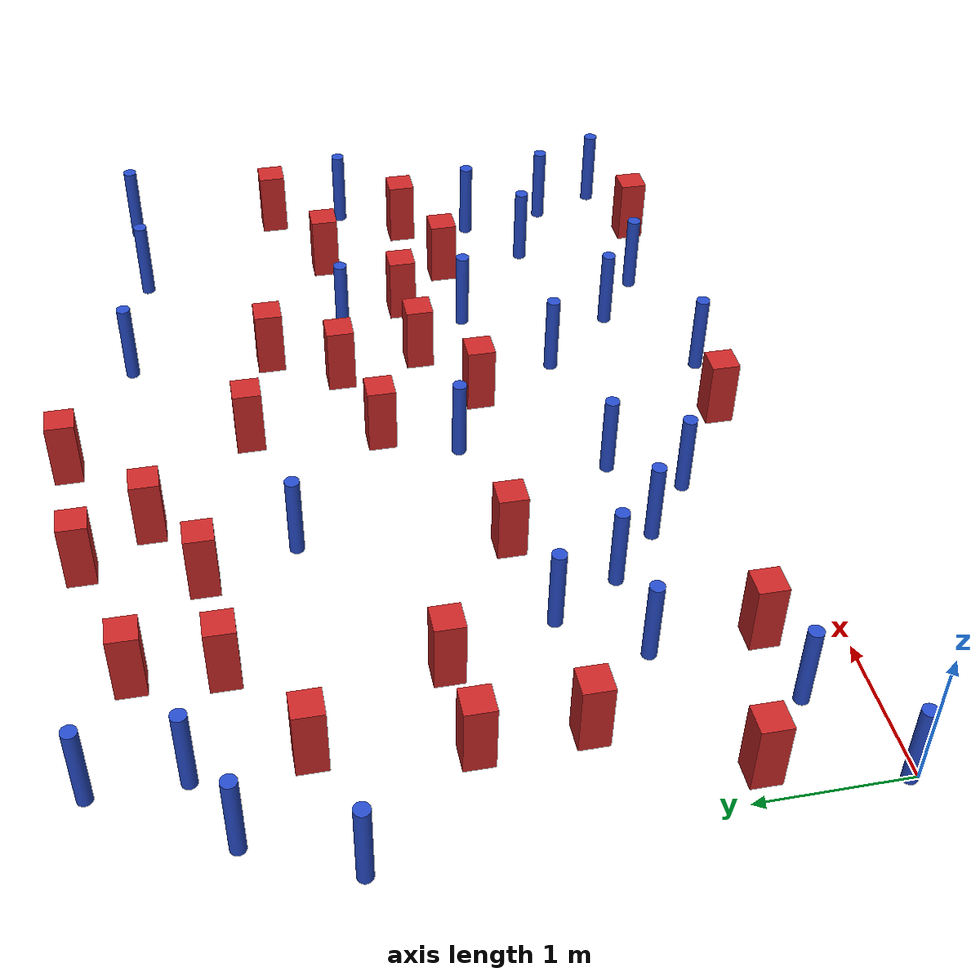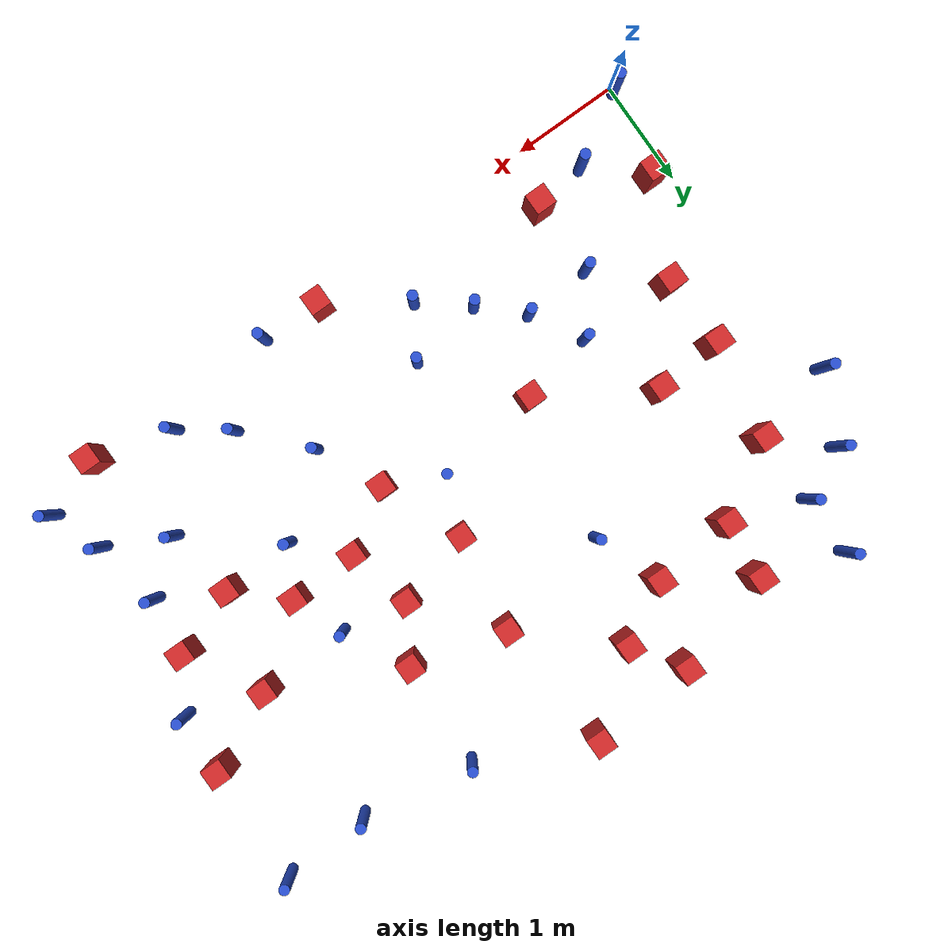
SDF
<sdf version="1.6">
 <model name="dense_78">
  <model name="square_post_obstacle3">
   <static>true</static>
   <pose>0.197763322349 0.872626212082 1.91545236811e-07 -7.35059704564e-06 1.12565212e-07 2.39332434364e-05</pose>
   <link name="link">
    <pose>0 0 0.25 0 -0 0</pose>
    <inertial>
     <mass>100</mass>
     <inertia>
      <ixx>0.166667</ixx>
      <ixy>0</ixy>
      <ixz>0</ixz>
      <iyy>0.166667</iyy>
      <iyz>0</iyz>
      <izz>0.166667</izz>
     </inertia>
    </inertial>
    <collision name="collision"><geometry><box><size>.2 .2 .5</size></box></geometry></collision>
    <visual name="visual">
     <geometry><box><size>.2 .2 .5</size></box></geometry>
     <material>
      <script><name>Gazebo/Red</name><uri>file://media/materials/scripts/gazebo.material</uri></script>
     </material>
    </visual>
   </link>
  </model>
  <model name="square_post_obstacle7">
   <static>true</static>
   <pose>2.50515203167 4.65884370068 1.91545236811e-07 -7.35059704564e-06 1.12565212e-07 2.39332434364e-05</pose>
   <link name="link">
    <pose>0 0 0.25 0 -0 0</pose>
    <inertial>
     <mass>100</mass>
     <inertia>
      <ixx>0.166667</ixx>
      <ixy>0</ixy>
      <ixz>0</ixz>
      <iyy>0.166667</iyy>
      <iyz>0</iyz>
      <izz>0.166667</izz>
     </inertia>
    </inertial>
    <collision name="collision"><geometry><box><size>.2 .2 .5</size></box></geometry></collision>
    <visual name="visual">
     <geometry><box><size>.2 .2 .5</size></box></geometry>
     <material>
      <script><name>Gazebo/Red</name><uri>file://media/materials/scripts/gazebo.material</uri></script>
     </material>
    </visual>
   </link>
  </model>
  <model name="pole_obstacle9">
   <static>true</static>
   <pose>4.5817701289 0.596697649328 7.38925637345e-09 -8.47170692799e-08 1.24976765038e-08 -1.74513093018e-07</pose>
   <link name="link">
    <pose>0 0 0.3 0 -0 0</pose>
    <inertial>
     <mass>1</mass>
     <inertia><ixx>0.145833</ixx><ixy>0</ixy><ixz>0</ixz><iyy>0.145833</iyy><iyz>0</iyz><izz>0.125</izz></inertia>
    </inertial>
    <collision name="collision">
     <geometry><cylinder><radius>0.05</radius><length>.6</length></cylinder></geometry>
    </collision>
    <visual name="visual">
     <geometry><cylinder><radius>0.05</radius><length>.6</length></cylinder></geometry>
     <material>
      <script><name>Gazebo/Blue</name><uri>file://media/materials/scripts/gazebo.material</uri></script>
     </material>
    </visual>
   </link>
  </model>
  <model name="pole_obstacle10">
   <static>true</static>
   <pose>5.64205923662 4.10121407407 7.38925637345e-09 -8.47170692796e-08 1.24976764786e-08 -1.74513093032e-07</pose>
   <link name="link">
    <pose>0 0 0.3 0 -0 0</pose>
    <inertial>
     <mass>1</mass>
     <inertia><ixx>0.145833</ixx><ixy>0</ixy><ixz>0</ixz><iyy>0.145833</iyy><iyz>0</iyz><izz>0.125</izz></inertia>
    </inertial>
    <collision name="collision">
     <geometry><cylinder><radius>0.05</radius><length>.6</length></cylinder></geometry>
    </collision>
    <visual name="visual">
     <geometry><cylinder><radius>0.05</radius><length>.6</length></cylinder></geometry>
     <material>
      <script><name>Gazebo/Blue</name><uri>file://media/materials/scripts/gazebo.material</uri></script>
     </material>
    </visual>
   </link>
  </model>
  <model name="pole_obstacle11">
   <static>true</static>
   <pose>4.08247064523 1.15306410399 7.38925637345e-09 -8.471706928e-08 1.24976765134e-08 -1.74513093015e-07</pose>
   <link name="link">
    <pose>0 0 0.3 0 -0 0</pose>
    <inertial>
     <mass>1</mass>
     <inertia><ixx>0.145833</ixx><ixy>0</ixy><ixz>0</ixz><iyy>0.145833</iyy><iyz>0</iyz><izz>0.125</izz></inertia>
    </inertial>
    <collision name="collision">
     <geometry><cylinder><radius>0.05</radius><length>.6</length></cylinder></geometry>
    </collision>
    <visual name="visual">
     <geometry><cylinder><radius>0.05</radius><length>.6</length></cylinder></geometry>
     <material>
      <script><name>Gazebo/Blue</name><uri>file://media/materials/scripts/gazebo.material</uri></script>
     </material>
    </visual>
   </link>
  </model>
  <model name="pole_obstacle13">
   <static>true</static>
   <pose>4.76619048261 1.69995667515 7.38925637345e-09 -8.471706928e-08 1.24976765134e-08 -1.74513093015e-07</pose>
   <link name="link">
    <pose>0 0 0.3 0 -0 0</pose>
    <inertial>
     <mass>1</mass>
     <inertia><ixx>0.145833</ixx><ixy>0</ixy><ixz>0</ixz><iyy>0.145833</iyy><iyz>0</iyz><izz>0.125</izz></inertia>
    </inertial>
    <collision name="collision">
     <geometry><cylinder><radius>0.05</radius><length>.6</length></cylinder></geometry>
    </collision>
    <visual name="visual">
     <geometry><cylinder><radius>0.05</radius><length>.6</length></cylinder></geometry>
     <material>
      <script><name>Gazebo/Blue</name><uri>file://media/materials/scripts/gazebo.material</uri></script>
     </material>
    </visual>
   </link>
  </model>
  <model name="square_post_obstacle10">
   <static>true</static>
   <pose>0.76890209243 3.38052567171 1.91545236811e-07 -7.35059704564e-06 1.12565212e-07 2.39332434364e-05</pose>
   <link name="link">
    <pose>0 0 0.25 0 -0 0</pose>
    <inertial>
     <mass>100</mass>
     <inertia>
      <ixx>0.166667</ixx>
      <ixy>0</ixy>
      <ixz>0</ixz>
      <iyy>0.166667</iyy>
      <iyz>0</iyz>
      <izz>0.166667</izz>
     </inertia>
    </inertial>
    <collision name="collision"><geometry><box><size>.2 .2 .5</size></box></geometry></collision>
    <visual name="visual">
     <geometry><box><size>.2 .2 .5</size></box></geometry>
     <material>
      <script><name>Gazebo/Red</name><uri>file://media/materials/scripts/gazebo.material</uri></script>
     </material>
    </visual>
   </link>
  </model>
  <model name="pole_obstacle17">
   <static>true</static>
   <pose>-0.0524319184626 3.18661917495 7.38925637345e-09 -8.47170692793e-08 1.24976764354e-08 -1.74513093044e-07</pose>
   <link name="link">
    <pose>0 0 0.3 0 -0 0</pose>
    <inertial>
     <mass>1</mass>
     <inertia><ixx>0.145833</ixx><ixy>0</ixy><ixz>0</ixz><iyy>0.145833</iyy><iyz>0</iyz><izz>0.125</izz></inertia>
    </inertial>
    <collision name="collision">
     <geometry><cylinder><radius>0.05</radius><length>.6</length></cylinder></geometry>
    </collision>
    <visual name="visual">
     <geometry><cylinder><radius>0.05</radius><length>.6</length></cylinder></geometry>
     <material>
      <script><name>Gazebo/Blue</name><uri>file://media/materials/scripts/gazebo.material</uri></script>
     </material>
    </visual>
   </link>
  </model>
  <model name="square_post_obstacle13">
   <static>true</static>
   <pose>5.76506913279 0.0766682827222 1.91545236811e-07 -7.35059704564e-06 1.12565212e-07 2.39332434364e-05</pose>
   <link name="link">
    <pose>0 0 0.25 0 -0 0</pose>
    <inertial>
     <mass>100</mass>
     <inertia>
      <ixx>0.166667</ixx>
      <ixy>0</ixy>
      <ixz>0</ixz>
      <iyy>0.166667</iyy>
      <iyz>0</iyz>
      <izz>0.166667</izz>
     </inertia>
    </inertial>
    <collision name="collision"><geometry><box><size>.2 .2 .5</size></box></geometry></collision>
    <visual name="visual">
     <geometry><box><size>.2 .2 .5</size></box></geometry>
     <material>
      <script><name>Gazebo/Red</name><uri>file://media/materials/scripts/gazebo.material</uri></script>
     </material>
    </visual>
   </link>
  </model>
  <model name="pole_obstacle24">
   <static>true</static>
   <pose>2.18061326486 0.925375867778 7.38925637345e-09 -8.471706928e-08 1.24976765177e-08 -1.74513093012e-07</pose>
   <link name="link">
    <pose>0 0 0.3 0 -0 0</pose>
    <inertial>
     <mass>1</mass>
     <inertia><ixx>0.145833</ixx><ixy>0</ixy><ixz>0</ixz><iyy>0.145833</iyy><iyz>0</iyz><izz>0.125</izz></inertia>
    </inertial>
    <collision name="collision">
     <geometry><cylinder><radius>0.05</radius><length>.6</length></cylinder></geometry>
    </collision>
    <visual name="visual">
     <geometry><cylinder><radius>0.05</radius><length>.6</length></cylinder></geometry>
     <material>
      <script><name>Gazebo/Blue</name><uri>file://media/materials/scripts/gazebo.material</uri></script>
     </material>
    </visual>
   </link>
  </model>
  <model name="pole_obstacle38">
   <static>true</static>
   <pose>2.48764823584 3.26178441346 7.38925637345e-09 -8.47170692798e-08 1.24976764939e-08 -1.74513093025e-07</pose>
   <link name="link">
    <pose>0 0 0.3 0 -0 0</pose>
    <inertial>
     <mass>1</mass>
     <inertia><ixx>0.145833</ixx><ixy>0</ixy><ixz>0</ixz><iyy>0.145833</iyy><iyz>0</iyz><izz>0.125</izz></inertia>
    </inertial>
    <collision name="collision">
     <geometry><cylinder><radius>0.05</radius><length>.6</length></cylinder></geometry>
    </collision>
    <visual name="visual">
     <geometry><cylinder><radius>0.05</radius><length>.6</length></cylinder></geometry>
     <material>
      <script><name>Gazebo/Blue</name><uri>file://media/materials/scripts/gazebo.material</uri></script>
     </material>
    </visual>
   </link>
  </model>
  <model name="square_post_obstacle31">
   <static>true</static>
   <pose>3.61120528066 3.46467088558 1.91545236811e-07 -7.35059704564e-06 1.12565212e-07 2.39332434364e-05</pose>
   <link name="link">
    <pose>0 0 0.25 0 -0 0</pose>
    <inertial>
     <mass>100</mass>
     <inertia>
      <ixx>0.166667</ixx>
      <ixy>0</ixy>
      <ixz>0</ixz>
      <iyy>0.166667</iyy>
      <iyz>0</iyz>
      <izz>0.166667</izz>
     </inertia>
    </inertial>
    <collision name="collision"><geometry><box><size>.2 .2 .5</size></box></geometry></collision>
    <visual name="visual">
     <geometry><box><size>.2 .2 .5</size></box></geometry>
     <material>
      <script><name>Gazebo/Red</name><uri>file://media/materials/scripts/gazebo.material</uri></script>
     </material>
    </visual>
   </link>
  </model>
  <model name="square_post_obstacle43">
   <static>true</static>
   <pose>3.46947250892 2.54650748216 1.91545236811e-07 -7.35059704564e-06 1.12565212e-07 2.39332434364e-05</pose>
   <link name="link">
    <pose>0 0 0.25 0 -0 0</pose>
    <inertial>
     <mass>100</mass>
     <inertia>
      <ixx>0.166667</ixx>
      <ixy>0</ixy>
      <ixz>0</ixz>
      <iyy>0.166667</iyy>
      <iyz>0</iyz>
      <izz>0.166667</izz>
     </inertia>
    </inertial>
    <collision name="collision"><geometry><box><size>.2 .2 .5</size></box></geometry></collision>
    <visual name="visual">
     <geometry><box><size>.2 .2 .5</size></box></geometry>
     <material>
      <script><name>Gazebo/Red</name><uri>file://media/materials/scripts/gazebo.material</uri></script>
     </material>
    </visual>
   </link>
  </model>
  <model name="pole_obstacle61">
   <static>true</static>
   <pose>2.88479872045 1.04086545277 7.38925637345e-09 -8.47170692793e-08 1.2497676438e-08 -1.74513093043e-07</pose>
   <link name="link">
    <pose>0 0 0.3 0 -0 0</pose>
    <inertial>
     <mass>1</mass>
     <inertia><ixx>0.145833</ixx><ixy>0</ixy><ixz>0</ixz><iyy>0.145833</iyy><iyz>0</iyz><izz>0.125</izz></inertia>
    </inertial>
    <collision name="collision">
     <geometry><cylinder><radius>0.05</radius><length>.6</length></cylinder></geometry>
    </collision>
    <visual name="visual">
     <geometry><cylinder><radius>0.05</radius><length>.6</length></cylinder></geometry>
     <material>
      <script><name>Gazebo/Blue</name><uri>file://media/materials/scripts/gazebo.material</uri></script>
     </material>
    </visual>
   </link>
  </model>
  <model name="square_post_obstacle48">
   <static>true</static>
   <pose>1.46260537371 3.81581991061 1.91545236811e-07 -7.35059704564e-06 1.12565212e-07 2.39332434364e-05</pose>
   <link name="link">
    <pose>0 0 0.25 0 -0 0</pose>
    <inertial>
     <mass>100</mass>
     <inertia>
      <ixx>0.166667</ixx>
      <ixy>0</ixy>
      <ixz>0</ixz>
      <iyy>0.166667</iyy>
      <iyz>0</iyz>
      <izz>0.166667</izz>
     </inertia>
    </inertial>
    <collision name="collision"><geometry><box><size>.2 .2 .5</size></box></geometry></collision>
    <visual name="visual">
     <geometry><box><size>.2 .2 .5</size></box></geometry>
     <material>
      <script><name>Gazebo/Red</name><uri>file://media/materials/scripts/gazebo.material</uri></script>
     </material>
    </visual>
   </link>
  </model>
  <model name="square_post_obstacle49">
   <static>true</static>
   <pose>2.25460048533 3.88420543305 1.91545236811e-07 -7.35059704564e-06 1.12565212e-07 2.39332434364e-05</pose>
   <link name="link">
    <pose>0 0 0.25 0 -0 0</pose>
    <inertial>
     <mass>100</mass>
     <inertia>
      <ixx>0.166667</ixx>
      <ixy>0</ixy>
      <ixz>0</ixz>
      <iyy>0.166667</iyy>
      <iyz>0</iyz>
      <izz>0.166667</izz>
     </inertia>
    </inertial>
    <collision name="collision"><geometry><box><size>.2 .2 .5</size></box></geometry></collision>
    <visual name="visual">
     <geometry><box><size>.2 .2 .5</size></box></geometry>
     <material>
      <script><name>Gazebo/Red</name><uri>file://media/materials/scripts/gazebo.material</uri></script>
     </material>
    </visual>
   </link>
  </model>
  <model name="pole_obstacle71">
   <static>true</static>
   <pose>0.00816820797269 0.0530729815732 7.38925637345e-09 -8.471706928e-08 1.24976765096e-08 -1.74513093014e-07</pose>
   <link name="link">
    <pose>0 0 0.3 0 -0 0</pose>
    <inertial>
     <mass>1</mass>
     <inertia><ixx>0.145833</ixx><ixy>0</ixy><ixz>0</ixz><iyy>0.145833</iyy><iyz>0</iyz><izz>0.125</izz></inertia>
    </inertial>
    <collision name="collision">
     <geometry><cylinder><radius>0.05</radius><length>.6</length></cylinder></geometry>
    </collision>
    <visual name="visual">
     <geometry><cylinder><radius>0.05</radius><length>.6</length></cylinder></geometry>
     <material>
      <script><name>Gazebo/Blue</name><uri>file://media/materials/scripts/gazebo.material</uri></script>
     </material>
    </visual>
   </link>
  </model>
  <model name="pole_obstacle72">
   <static>true</static>
   <pose>6.16637277579 0.757675020127 7.38925637345e-09 -8.47170692799e-08 1.24976765038e-08 -1.74513093018e-07</pose>
   <link name="link">
    <pose>0 0 0.3 0 -0 0</pose>
    <inertial>
     <mass>1</mass>
     <inertia><ixx>0.145833</ixx><ixy>0</ixy><ixz>0</ixz><iyy>0.145833</iyy><iyz>0</iyz><izz>0.125</izz></inertia>
    </inertial>
    <collision name="collision">
     <geometry><cylinder><radius>0.05</radius><length>.6</length></cylinder></geometry>
    </collision>
    <visual name="visual">
     <geometry><cylinder><radius>0.05</radius><length>.6</length></cylinder></geometry>
     <material>
      <script><name>Gazebo/Blue</name><uri>file://media/materials/scripts/gazebo.material</uri></script>
     </material>
    </visual>
   </link>
  </model>
  <model name="pole_obstacle79">
   <static>true</static>
   <pose>0.728909934405 4.6613073984 7.38925637345e-09 -8.471706928e-08 1.24976765086e-08 -1.74513093015e-07</pose>
   <link name="link">
    <pose>0 0 0.3 0 -0 0</pose>
    <inertial>
     <mass>1</mass>
     <inertia><ixx>0.145833</ixx><ixy>0</ixy><ixz>0</ixz><iyy>0.145833</iyy><iyz>0</iyz><izz>0.125</izz></inertia>
    </inertial>
    <collision name="collision">
     <geometry><cylinder><radius>0.05</radius><length>.6</length></cylinder></geometry>
    </collision>
    <visual name="visual">
     <geometry><cylinder><radius>0.05</radius><length>.6</length></cylinder></geometry>
     <material>
      <script><name>Gazebo/Blue</name><uri>file://media/materials/scripts/gazebo.material</uri></script>
     </material>
    </visual>
   </link>
  </model>
  <model name="square_post_obstacle67">
   <static>true</static>
   <pose>1.25568139474 2.48988867686 1.91545236811e-07 -7.35059704564e-06 1.12565212e-07 2.39332434364e-05</pose>
   <link name="link">
    <pose>0 0 0.25 0 -0 0</pose>
    <inertial>
     <mass>100</mass>
     <inertia>
      <ixx>0.166667</ixx>
      <ixy>0</ixy>
      <ixz>0</ixz>
      <iyy>0.166667</iyy>
      <iyz>0</iyz>
      <izz>0.166667</izz>
     </inertia>
    </inertial>
    <collision name="collision"><geometry><box><size>.2 .2 .5</size></box></geometry></collision>
    <visual name="visual">
     <geometry><box><size>.2 .2 .5</size></box></geometry>
     <material>
      <script><name>Gazebo/Red</name><uri>file://media/materials/scripts/gazebo.material</uri></script>
     </material>
    </visual>
   </link>
  </model>
  <model name="pole_obstacle84">
   <static>true</static>
   <pose>1.17489013954 1.24223662418 7.38925637345e-09 -8.471706928e-08 1.24976765079e-08 -1.74513093017e-07</pose>
   <link name="link">
    <pose>0 0 0.3 0 -0 0</pose>
    <inertial>
     <mass>1</mass>
     <inertia><ixx>0.145833</ixx><ixy>0</ixy><ixz>0</ixz><iyy>0.145833</iyy><iyz>0</iyz><izz>0.125</izz></inertia>
    </inertial>
    <collision name="collision">
     <geometry><cylinder><radius>0.05</radius><length>.6</length></cylinder></geometry>
    </collision>
    <visual name="visual">
     <geometry><cylinder><radius>0.05</radius><length>.6</length></cylinder></geometry>
     <material>
      <script><name>Gazebo/Blue</name><uri>file://media/materials/scripts/gazebo.material</uri></script>
     </material>
    </visual>
   </link>
  </model>
  <model name="square_post_obstacle75">
   <static>true</static>
   <pose>1.51665894973 4.37676680655 1.91545236811e-07 -7.35059704564e-06 1.12565212e-07 2.39332434364e-05</pose>
   <link name="link">
    <pose>0 0 0.25 0 -0 0</pose>
    <inertial>
     <mass>100</mass>
     <inertia>
      <ixx>0.166667</ixx>
      <ixy>0</ixy>
      <ixz>0</ixz>
      <iyy>0.166667</iyy>
      <iyz>0</iyz>
      <izz>0.166667</izz>
     </inertia>
    </inertial>
    <collision name="collision"><geometry><box><size>.2 .2 .5</size></box></geometry></collision>
    <visual name="visual">
     <geometry><box><size>.2 .2 .5</size></box></geometry>
     <material>
      <script><name>Gazebo/Red</name><uri>file://media/materials/scripts/gazebo.material</uri></script>
     </material>
    </visual>
   </link>
  </model>
  <model name="square_post_obstacle79">
   <static>true</static>
   <pose>1.18855624209 0.529211901685 1.91545236811e-07 -7.35059704564e-06 1.12565212e-07 2.39332434364e-05</pose>
   <link name="link">
    <pose>0 0 0.25 0 -0 0</pose>
    <inertial>
     <mass>100</mass>
     <inertia>
      <ixx>0.166667</ixx>
      <ixy>0</ixy>
      <ixz>0</ixz>
      <iyy>0.166667</iyy>
      <iyz>0</iyz>
      <izz>0.166667</izz>
     </inertia>
    </inertial>
    <collision name="collision"><geometry><box><size>.2 .2 .5</size></box></geometry></collision>
    <visual name="visual">
     <geometry><box><size>.2 .2 .5</size></box></geometry>
     <material>
      <script><name>Gazebo/Red</name><uri>file://media/materials/scripts/gazebo.material</uri></script>
     </material>
    </visual>
   </link>
  </model>
  <model name="square_post_obstacle84">
   <static>true</static>
   <pose>6.42989580042 3.0022363274 1.91545236811e-07 -7.35059704564e-06 1.12565212e-07 2.39332434364e-05</pose>
   <link name="link">
    <pose>0 0 0.25 0 -0 0</pose>
    <inertial>
     <mass>100</mass>
     <inertia>
      <ixx>0.166667</ixx>
      <ixy>0</ixy>
      <ixz>0</ixz>
      <iyy>0.166667</iyy>
      <iyz>0</iyz>
      <izz>0.166667</izz>
     </inertia>
    </inertial>
    <collision name="collision"><geometry><box><size>.2 .2 .5</size></box></geometry></collision>
    <visual name="visual">
     <geometry><box><size>.2 .2 .5</size></box></geometry>
     <material>
      <script><name>Gazebo/Red</name><uri>file://media/materials/scripts/gazebo.material</uri></script>
     </material>
    </visual>
   </link>
  </model>
  <model name="square_post_obstacle88">
   <static>true</static>
   <pose>4.34995348564 2.1222153509 1.91545236811e-07 -7.35059704564e-06 1.12565212e-07 2.39332434364e-05</pose>
   <link name="link">
    <pose>0 0 0.25 0 -0 0</pose>
    <inertial>
     <mass>100</mass>
     <inertia>
      <ixx>0.166667</ixx>
      <ixy>0</ixy>
      <ixz>0</ixz>
      <iyy>0.166667</iyy>
      <iyz>0</iyz>
      <izz>0.166667</izz>
     </inertia>
    </inertial>
    <collision name="collision"><geometry><box><size>.2 .2 .5</size></box></geometry></collision>
    <visual name="visual">
     <geometry><box><size>.2 .2 .5</size></box></geometry>
     <material>
      <script><name>Gazebo/Red</name><uri>file://media/materials/scripts/gazebo.material</uri></script>
     </material>
    </visual>
   </link>
  </model>
  <model name="pole_obstacle100">
   <static>true</static>
   <pose>4.56393103715 4.26243662734 7.38925637345e-09 -8.47170692796e-08 1.24976764786e-08 -1.74513093032e-07</pose>
   <link name="link">
    <pose>0 0 0.3 0 -0 0</pose>
    <inertial>
     <mass>1</mass>
     <inertia><ixx>0.145833</ixx><ixy>0</ixy><ixz>0</ixz><iyy>0.145833</iyy><iyz>0</iyz><izz>0.125</izz></inertia>
    </inertial>
    <collision name="collision">
     <geometry><cylinder><radius>0.05</radius><length>.6</length></cylinder></geometry>
    </collision>
    <visual name="visual">
     <geometry><cylinder><radius>0.05</radius><length>.6</length></cylinder></geometry>
     <material>
      <script><name>Gazebo/Blue</name><uri>file://media/materials/scripts/gazebo.material</uri></script>
     </material>
    </visual>
   </link>
  </model>
  <model name="square_post_obstacle93">
   <static>true</static>
   <pose>4.50042449982 3.22805243353 1.91545236811e-07 -7.35059704564e-06 1.12565212e-07 2.39332434364e-05</pose>
   <link name="link">
    <pose>0 0 0.25 0 -0 0</pose>
    <inertial>
     <mass>100</mass>
     <inertia>
      <ixx>0.166667</ixx>
      <ixy>0</ixy>
      <ixz>0</ixz>
      <iyy>0.166667</iyy>
      <iyz>0</iyz>
      <izz>0.166667</izz>
     </inertia>
    </inertial>
    <collision name="collision"><geometry><box><size>.2 .2 .5</size></box></geometry></collision>
    <visual name="visual">
     <geometry><box><size>.2 .2 .5</size></box></geometry>
     <material>
      <script><name>Gazebo/Red</name><uri>file://media/materials/scripts/gazebo.material</uri></script>
     </material>
    </visual>
   </link>
  </model>
  <model name="square_post_obstacle95">
   <static>true</static>
   <pose>3.51024687479 4.73653654691 1.91545236811e-07 -7.35059704564e-06 1.12565212e-07 2.39332434364e-05</pose>
   <link name="link">
    <pose>0 0 0.25 0 -0 0</pose>
    <inertial>
     <mass>100</mass>
     <inertia>
      <ixx>0.166667</ixx>
      <ixy>0</ixy>
      <ixz>0</ixz>
      <iyy>0.166667</iyy>
      <iyz>0</iyz>
      <izz>0.166667</izz>
     </inertia>
    </inertial>
    <collision name="collision"><geometry><box><size>.2 .2 .5</size></box></geometry></collision>
    <visual name="visual">
     <geometry><box><size>.2 .2 .5</size></box></geometry>
     <material>
      <script><name>Gazebo/Red</name><uri>file://media/materials/scripts/gazebo.material</uri></script>
     </material>
    </visual>
   </link>
  </model>
  <model name="square_post_obstacle98">
   <static>true</static>
   <pose>2.248269447 1.88332826396 1.91545236811e-07 -7.35059704564e-06 1.12565212e-07 2.39332434364e-05</pose>
   <link name="link">
    <pose>0 0 0.25 0 -0 0</pose>
    <inertial>
     <mass>100</mass>
     <inertia>
      <ixx>0.166667</ixx>
      <ixy>0</ixy>
      <ixz>0</ixz>
      <iyy>0.166667</iyy>
      <iyz>0</iyz>
      <izz>0.166667</izz>
     </inertia>
    </inertial>
    <collision name="collision"><geometry><box><size>.2 .2 .5</size></box></geometry></collision>
    <visual name="visual">
     <geometry><box><size>.2 .2 .5</size></box></geometry>
     <material>
      <script><name>Gazebo/Red</name><uri>file://media/materials/scripts/gazebo.material</uri></script>
     </material>
    </visual>
   </link>
  </model>
  <model name="square_post_obstacle99">
   <static>true</static>
   <pose>3.30997756347 0.110569797196 1.91545236811e-07 -7.35059704564e-06 1.12565212e-07 2.39332434364e-05</pose>
   <link name="link">
    <pose>0 0 0.25 0 -0 0</pose>
    <inertial>
     <mass>100</mass>
     <inertia>
      <ixx>0.166667</ixx>
      <ixy>0</ixy>
      <ixz>0</ixz>
      <iyy>0.166667</iyy>
      <iyz>0</iyz>
      <izz>0.166667</izz>
     </inertia>
    </inertial>
    <collision name="collision"><geometry><box><size>.2 .2 .5</size></box></geometry></collision>
    <visual name="visual">
     <geometry><box><size>.2 .2 .5</size></box></geometry>
     <material>
      <script><name>Gazebo/Red</name><uri>file://media/materials/scripts/gazebo.material</uri></script>
     </material>
    </visual>
   </link>
  </model>
  <model name="square_post_obstacle104">
   <static>true</static>
   <pose>4.19956412237 2.73518294111 1.91545236811e-07 -7.35059704564e-06 1.12565212e-07 2.39332434364e-05</pose>
   <link name="link">
    <pose>0 0 0.25 0 -0 0</pose>
    <inertial>
     <mass>100</mass>
     <inertia>
      <ixx>0.166667</ixx>
      <ixy>0</ixy>
      <ixz>0</ixz>
      <iyy>0.166667</iyy>
      <iyz>0</iyz>
      <izz>0.166667</izz>
     </inertia>
    </inertial>
    <collision name="collision"><geometry><box><size>.2 .2 .5</size></box></geometry></collision>
    <visual name="visual">
     <geometry><box><size>.2 .2 .5</size></box></geometry>
     <material>
      <script><name>Gazebo/Red</name><uri>file://media/materials/scripts/gazebo.material</uri></script>
     </material>
    </visual>
   </link>
  </model>
  <model name="square_post_obstacle110">
   <static>true</static>
   <pose>5.44641598073 1.736956131 1.91545236811e-07 -7.35059704564e-06 1.12565212e-07 2.39332434364e-05</pose>
   <link name="link">
    <pose>0 0 0.25 0 -0 0</pose>
    <inertial>
     <mass>100</mass>
     <inertia>
      <ixx>0.166667</ixx>
      <ixy>0</ixy>
      <ixz>0</ixz>
      <iyy>0.166667</iyy>
      <iyz>0</iyz>
      <izz>0.166667</izz>
     </inertia>
    </inertial>
    <collision name="collision"><geometry><box><size>.2 .2 .5</size></box></geometry></collision>
    <visual name="visual">
     <geometry><box><size>.2 .2 .5</size></box></geometry>
     <material>
      <script><name>Gazebo/Red</name><uri>file://media/materials/scripts/gazebo.material</uri></script>
     </material>
    </visual>
   </link>
  </model>
  <model name="pole_obstacle113">
   <static>true</static>
   <pose>4.8288170901 2.63311452113 7.38925637345e-09 -8.47170692798e-08 1.24976764937e-08 -1.74513093023e-07</pose>
   <link name="link">
    <pose>0 0 0.3 0 -0 0</pose>
    <inertial>
     <mass>1</mass>
     <inertia><ixx>0.145833</ixx><ixy>0</ixy><ixz>0</ixz><iyy>0.145833</iyy><iyz>0</iyz><izz>0.125</izz></inertia>
    </inertial>
    <collision name="collision">
     <geometry><cylinder><radius>0.05</radius><length>.6</length></cylinder></geometry>
    </collision>
    <visual name="visual">
     <geometry><cylinder><radius>0.05</radius><length>.6</length></cylinder></geometry>
     <material>
      <script><name>Gazebo/Blue</name><uri>file://media/materials/scripts/gazebo.material</uri></script>
     </material>
    </visual>
   </link>
  </model>
  <model name="pole_obstacle116">
   <static>true</static>
   <pose>0.248300868231 3.84309872755 7.38925637345e-09 -8.47170692792e-08 1.24976764352e-08 -1.74513093043e-07</pose>
   <link name="link">
    <pose>0 0 0.3 0 -0 0</pose>
    <inertial>
     <mass>1</mass>
     <inertia><ixx>0.145833</ixx><ixy>0</ixy><ixz>0</ixz><iyy>0.145833</iyy><iyz>0</iyz><izz>0.125</izz></inertia>
    </inertial>
    <collision name="collision">
     <geometry><cylinder><radius>0.05</radius><length>.6</length></cylinder></geometry>
    </collision>
    <visual name="visual">
     <geometry><cylinder><radius>0.05</radius><length>.6</length></cylinder></geometry>
     <material>
      <script><name>Gazebo/Blue</name><uri>file://media/materials/scripts/gazebo.material</uri></script>
     </material>
    </visual>
   </link>
  </model>
  <model name="square_post_obstacle119">
   <static>true</static>
   <pose>5.69163526421 2.65849430049 1.91545236811e-07 -7.35059704564e-06 1.12565212e-07 2.39332434364e-05</pose>
   <link name="link">
    <pose>0 0 0.25 0 -0 0</pose>
    <inertial>
     <mass>100</mass>
     <inertia>
      <ixx>0.166667</ixx>
      <ixy>0</ixy>
      <ixz>0</ixz>
      <iyy>0.166667</iyy>
      <iyz>0</iyz>
      <izz>0.166667</izz>
     </inertia>
    </inertial>
    <collision name="collision"><geometry><box><size>.2 .2 .5</size></box></geometry></collision>
    <visual name="visual">
     <geometry><box><size>.2 .2 .5</size></box></geometry>
     <material>
      <script><name>Gazebo/Red</name><uri>file://media/materials/scripts/gazebo.material</uri></script>
     </material>
    </visual>
   </link>
  </model>
  <model name="pole_obstacle120">
   <static>true</static>
   <pose>6.4238691979 2.43641128673 7.38925637345e-09 -8.47170692798e-08 1.24976764937e-08 -1.74513093023e-07</pose>
   <link name="link">
    <pose>0 0 0.3 0 -0 0</pose>
    <inertial>
     <mass>1</mass>
     <inertia><ixx>0.145833</ixx><ixy>0</ixy><ixz>0</ixz><iyy>0.145833</iyy><iyz>0</iyz><izz>0.125</izz></inertia>
    </inertial>
    <collision name="collision">
     <geometry><cylinder><radius>0.05</radius><length>.6</length></cylinder></geometry>
    </collision>
    <visual name="visual">
     <geometry><cylinder><radius>0.05</radius><length>.6</length></cylinder></geometry>
     <material>
      <script><name>Gazebo/Blue</name><uri>file://media/materials/scripts/gazebo.material</uri></script>
     </material>
    </visual>
   </link>
  </model>
  <model name="square_post_obstacle124">
   <static>true</static>
   <pose>6.08778506349 1.96865286695 1.91545236811e-07 -7.35059704564e-06 1.12565212e-07 2.39332434364e-05</pose>
   <link name="link">
    <pose>0 0 0.25 0 -0 0</pose>
    <inertial>
     <mass>100</mass>
     <inertia>
      <ixx>0.166667</ixx>
      <ixy>0</ixy>
      <ixz>0</ixz>
      <iyy>0.166667</iyy>
      <iyz>0</iyz>
      <izz>0.166667</izz>
     </inertia>
    </inertial>
    <collision name="collision"><geometry><box><size>.2 .2 .5</size></box></geometry></collision>
    <visual name="visual">
     <geometry><box><size>.2 .2 .5</size></box></geometry>
     <material>
      <script><name>Gazebo/Red</name><uri>file://media/materials/scripts/gazebo.material</uri></script>
     </material>
    </visual>
   </link>
  </model>
  <model name="square_post_obstacle127">
   <static>true</static>
   <pose>0.640403276028 1.75826861605 1.91545236811e-07 -7.35059704564e-06 1.12565212e-07 2.39332434364e-05</pose>
   <link name="link">
    <pose>0 0 0.25 0 -0 0</pose>
    <inertial>
     <mass>100</mass>
     <inertia>
      <ixx>0.166667</ixx>
      <ixy>0</ixy>
      <ixz>0</ixz>
      <iyy>0.166667</iyy>
      <iyz>0</iyz>
      <izz>0.166667</izz>
     </inertia>
    </inertial>
    <collision name="collision"><geometry><box><size>.2 .2 .5</size></box></geometry></collision>
    <visual name="visual">
     <geometry><box><size>.2 .2 .5</size></box></geometry>
     <material>
      <script><name>Gazebo/Red</name><uri>file://media/materials/scripts/gazebo.material</uri></script>
     </material>
    </visual>
   </link>
  </model>
  <model name="pole_obstacle139">
   <static>true</static>
   <pose>6.0413543143 1.41639294812 7.38925637345e-09 -8.471706928e-08 1.24976765134e-08 -1.74513093015e-07</pose>
   <link name="link">
    <pose>0 0 0.3 0 -0 0</pose>
    <inertial>
     <mass>1</mass>
     <inertia><ixx>0.145833</ixx><ixy>0</ixy><ixz>0</ixz><iyy>0.145833</iyy><iyz>0</iyz><izz>0.125</izz></inertia>
    </inertial>
    <collision name="collision">
     <geometry><cylinder><radius>0.05</radius><length>.6</length></cylinder></geometry>
    </collision>
    <visual name="visual">
     <geometry><cylinder><radius>0.05</radius><length>.6</length></cylinder></geometry>
     <material>
      <script><name>Gazebo/Blue</name><uri>file://media/materials/scripts/gazebo.material</uri></script>
     </material>
    </visual>
   </link>
  </model>
  <model name="pole_obstacle143">
   <static>true</static>
   <pose>1.5405124663 1.74555726712 7.38925637345e-09 -8.471706928e-08 1.24976765079e-08 -1.74513093017e-07</pose>
   <link name="link">
    <pose>0 0 0.3 0 -0 0</pose>
    <inertial>
     <mass>1</mass>
     <inertia><ixx>0.145833</ixx><ixy>0</ixy><ixz>0</ixz><iyy>0.145833</iyy><iyz>0</iyz><izz>0.125</izz></inertia>
    </inertial>
    <collision name="collision">
     <geometry><cylinder><radius>0.05</radius><length>.6</length></cylinder></geometry>
    </collision>
    <visual name="visual">
     <geometry><cylinder><radius>0.05</radius><length>.6</length></cylinder></geometry>
     <material>
      <script><name>Gazebo/Blue</name><uri>file://media/materials/scripts/gazebo.material</uri></script>
     </material>
    </visual>
   </link>
  </model>
  <model name="pole_obstacle154">
   <static>true</static>
   <pose>5.57274888539 1.05326708711 7.38925637345e-09 -8.471706928e-08 1.24976765134e-08 -1.74513093015e-07</pose>
   <link name="link">
    <pose>0 0 0.3 0 -0 0</pose>
    <inertial>
     <mass>1</mass>
     <inertia><ixx>0.145833</ixx><ixy>0</ixy><ixz>0</ixz><iyy>0.145833</iyy><iyz>0</iyz><izz>0.125</izz></inertia>
    </inertial>
    <collision name="collision">
     <geometry><cylinder><radius>0.05</radius><length>.6</length></cylinder></geometry>
    </collision>
    <visual name="visual">
     <geometry><cylinder><radius>0.05</radius><length>.6</length></cylinder></geometry>
     <material>
      <script><name>Gazebo/Blue</name><uri>file://media/materials/scripts/gazebo.material</uri></script>
     </material>
    </visual>
   </link>
  </model>
  <model name="pole_obstacle158">
   <static>true</static>
   <pose>3.88780597992 0.0725775920817 7.38925637345e-09 -8.47170692793e-08 1.24976764419e-08 -1.74513093041e-07</pose>
   <link name="link">
    <pose>0 0 0.3 0 -0 0</pose>
    <inertial>
     <mass>1</mass>
     <inertia><ixx>0.145833</ixx><ixy>0</ixy><ixz>0</ixz><iyy>0.145833</iyy><iyz>0</iyz><izz>0.125</izz></inertia>
    </inertial>
    <collision name="collision">
     <geometry><cylinder><radius>0.05</radius><length>.6</length></cylinder></geometry>
    </collision>
    <visual name="visual">
     <geometry><cylinder><radius>0.05</radius><length>.6</length></cylinder></geometry>
     <material>
      <script><name>Gazebo/Blue</name><uri>file://media/materials/scripts/gazebo.material</uri></script>
     </material>
    </visual>
   </link>
  </model>
  <model name="pole_obstacle161">
   <static>true</static>
   <pose>3.25003727473 2.02201295908 7.38925637345e-09 -8.47170692799e-08 1.24976765087e-08 -1.74513093015e-07</pose>
   <link name="link">
    <pose>0 0 0.3 0 -0 0</pose>
    <inertial>
     <mass>1</mass>
     <inertia><ixx>0.145833</ixx><ixy>0</ixy><ixz>0</ixz><iyy>0.145833</iyy><iyz>0</iyz><izz>0.125</izz></inertia>
    </inertial>
    <collision name="collision">
     <geometry><cylinder><radius>0.05</radius><length>.6</length></cylinder></geometry>
    </collision>
    <visual name="visual">
     <geometry><cylinder><radius>0.05</radius><length>.6</length></cylinder></geometry>
     <material>
      <script><name>Gazebo/Blue</name><uri>file://media/materials/scripts/gazebo.material</uri></script>
     </material>
    </visual>
   </link>
  </model>
  <model name="square_post_obstacle155">
   <static>true</static>
   <pose>5.00041059274 2.14344006434 1.91545236811e-07 -7.35059704564e-06 1.12565212e-07 2.39332434364e-05</pose>
   <link name="link">
    <pose>0 0 0.25 0 -0 0</pose>
    <inertial>
     <mass>100</mass>
     <inertia>
      <ixx>0.166667</ixx>
      <ixy>0</ixy>
      <ixz>0</ixz>
      <iyy>0.166667</iyy>
      <iyz>0</iyz>
      <izz>0.166667</izz>
     </inertia>
    </inertial>
    <collision name="collision"><geometry><box><size>.2 .2 .5</size></box></geometry></collision>
    <visual name="visual">
     <geometry><box><size>.2 .2 .5</size></box></geometry>
     <material>
      <script><name>Gazebo/Red</name><uri>file://media/materials/scripts/gazebo.material</uri></script>
     </material>
    </visual>
   </link>
  </model>
  <model name="square_post_obstacle156">
   <static>true</static>
   <pose>3.78830703492 1.77176407418 1.91545236811e-07 -7.35059704564e-06 1.12565212e-07 2.39332434364e-05</pose>
   <link name="link">
    <pose>0 0 0.25 0 -0 0</pose>
    <inertial>
     <mass>100</mass>
     <inertia>
      <ixx>0.166667</ixx>
      <ixy>0</ixy>
      <ixz>0</ixz>
      <iyy>0.166667</iyy>
      <iyz>0</iyz>
      <izz>0.166667</izz>
     </inertia>
    </inertial>
    <collision name="collision"><geometry><box><size>.2 .2 .5</size></box></geometry></collision>
    <visual name="visual">
     <geometry><box><size>.2 .2 .5</size></box></geometry>
     <material>
      <script><name>Gazebo/Red</name><uri>file://media/materials/scripts/gazebo.material</uri></script>
     </material>
    </visual>
   </link>
  </model>
  <model name="square_post_obstacle161">
   <static>true</static>
   <pose>2.81438187715 4.19852938892 1.91545236811e-07 -7.35059704564e-06 1.12565212e-07 2.39332434364e-05</pose>
   <link name="link">
    <pose>0 0 0.25 0 -0 0</pose>
    <inertial>
     <mass>100</mass>
     <inertia>
      <ixx>0.166667</ixx>
      <ixy>0</ixy>
      <ixz>0</ixz>
      <iyy>0.166667</iyy>
      <iyz>0</iyz>
      <izz>0.166667</izz>
     </inertia>
    </inertial>
    <collision name="collision"><geometry><box><size>.2 .2 .5</size></box></geometry></collision>
    <visual name="visual">
     <geometry><box><size>.2 .2 .5</size></box></geometry>
     <material>
      <script><name>Gazebo/Red</name><uri>file://media/materials/scripts/gazebo.material</uri></script>
     </material>
    </visual>
   </link>
  </model>
  <model name="pole_obstacle171">
   <static>true</static>
   <pose>0.666462748776 0.450968141755 7.38925637345e-09 -8.471706928e-08 1.24976765086e-08 -1.74513093015e-07</pose>
   <link name="link">
    <pose>0 0 0.3 0 -0 0</pose>
    <inertial>
     <mass>1</mass>
     <inertia><ixx>0.145833</ixx><ixy>0</ixy><ixz>0</ixz><iyy>0.145833</iyy><iyz>0</iyz><izz>0.125</izz></inertia>
    </inertial>
    <collision name="collision">
     <geometry><cylinder><radius>0.05</radius><length>.6</length></cylinder></geometry>
    </collision>
    <visual name="visual">
     <geometry><cylinder><radius>0.05</radius><length>.6</length></cylinder></geometry>
     <material>
      <script><name>Gazebo/Blue</name><uri>file://media/materials/scripts/gazebo.material</uri></script>
     </material>
    </visual>
   </link>
  </model>
  <model name="pole_obstacle187">
   <static>true</static>
   <pose>5.0173341681 0.271024867705 7.38925637345e-09 -8.47170692799e-08 1.24976765028e-08 -1.74513093019e-07</pose>
   <link name="link">
    <pose>0 0 0.3 0 -0 0</pose>
    <inertial>
     <mass>1</mass>
     <inertia><ixx>0.145833</ixx><ixy>0</ixy><ixz>0</ixz><iyy>0.145833</iyy><iyz>0</iyz><izz>0.125</izz></inertia>
    </inertial>
    <collision name="collision">
     <geometry><cylinder><radius>0.05</radius><length>.6</length></cylinder></geometry>
    </collision>
    <visual name="visual">
     <geometry><cylinder><radius>0.05</radius><length>.6</length></cylinder></geometry>
     <material>
      <script><name>Gazebo/Blue</name><uri>file://media/materials/scripts/gazebo.material</uri></script>
     </material>
    </visual>
   </link>
  </model>
  <model name="pole_obstacle188">
   <static>true</static>
   <pose>6.48958039079 4.15143401782 7.38925637345e-09 -8.47170692796e-08 1.24976764786e-08 -1.74513093032e-07</pose>
   <link name="link">
    <pose>0 0 0.3 0 -0 0</pose>
    <inertial>
     <mass>1</mass>
     <inertia><ixx>0.145833</ixx><ixy>0</ixy><ixz>0</ixz><iyy>0.145833</iyy><iyz>0</iyz><izz>0.125</izz></inertia>
    </inertial>
    <collision name="collision">
     <geometry><cylinder><radius>0.05</radius><length>.6</length></cylinder></geometry>
    </collision>
    <visual name="visual">
     <geometry><cylinder><radius>0.05</radius><length>.6</length></cylinder></geometry>
     <material>
      <script><name>Gazebo/Blue</name><uri>file://media/materials/scripts/gazebo.material</uri></script>
     </material>
    </visual>
   </link>
  </model>
  <model name="square_post_obstacle206">
   <static>true</static>
   <pose>0.617924201021 2.44163004359 1.91545236811e-07 -7.35059704564e-06 1.12565212e-07 2.39332434364e-05</pose>
   <link name="link">
    <pose>0 0 0.25 0 -0 0</pose>
    <inertial>
     <mass>100</mass>
     <inertia>
      <ixx>0.166667</ixx>
      <ixy>0</ixy>
      <ixz>0</ixz>
      <iyy>0.166667</iyy>
      <iyz>0</iyz>
      <izz>0.166667</izz>
     </inertia>
    </inertial>
    <collision name="collision"><geometry><box><size>.2 .2 .5</size></box></geometry></collision>
    <visual name="visual">
     <geometry><box><size>.2 .2 .5</size></box></geometry>
     <material>
      <script><name>Gazebo/Red</name><uri>file://media/materials/scripts/gazebo.material</uri></script>
     </material>
    </visual>
   </link>
  </model>
  <model name="pole_obstacle199">
   <static>true</static>
   <pose>2.60040884378 0.582694168469 7.38925637345e-09 -8.471706928e-08 1.24976765177e-08 -1.74513093012e-07</pose>
   <link name="link">
    <pose>0 0 0.3 0 -0 0</pose>
    <inertial>
     <mass>1</mass>
     <inertia><ixx>0.145833</ixx><ixy>0</ixy><ixz>0</ixz><iyy>0.145833</iyy><iyz>0</iyz><izz>0.125</izz></inertia>
    </inertial>
    <collision name="collision">
     <geometry><cylinder><radius>0.05</radius><length>.6</length></cylinder></geometry>
    </collision>
    <visual name="visual">
     <geometry><cylinder><radius>0.05</radius><length>.6</length></cylinder></geometry>
     <material>
      <script><name>Gazebo/Blue</name><uri>file://media/materials/scripts/gazebo.material</uri></script>
     </material>
    </visual>
   </link>
  </model>
  <model name="pole_obstacle203">
   <static>true</static>
   <pose>6.35715855158 0.27121500143 7.38925637345e-09 -8.47170692799e-08 1.24976765028e-08 -1.74513093019e-07</pose>
   <link name="link">
    <pose>0 0 0.3 0 -0 0</pose>
    <inertial>
     <mass>1</mass>
     <inertia><ixx>0.145833</ixx><ixy>0</ixy><ixz>0</ixz><iyy>0.145833</iyy><iyz>0</iyz><izz>0.125</izz></inertia>
    </inertial>
    <collision name="collision">
     <geometry><cylinder><radius>0.05</radius><length>.6</length></cylinder></geometry>
    </collision>
    <visual name="visual">
     <geometry><cylinder><radius>0.05</radius><length>.6</length></cylinder></geometry>
     <material>
      <script><name>Gazebo/Blue</name><uri>file://media/materials/scripts/gazebo.material</uri></script>
     </material>
    </visual>
   </link>
  </model>
  <model name="pole_obstacle205">
   <static>true</static>
   <pose>1.81802111055 1.27218638451 7.38925637345e-09 -8.471706928e-08 1.24976765079e-08 -1.74513093017e-07</pose>
   <link name="link">
    <pose>0 0 0.3 0 -0 0</pose>
    <inertial>
     <mass>1</mass>
     <inertia><ixx>0.145833</ixx><ixy>0</ixy><ixz>0</ixz><iyy>0.145833</iyy><iyz>0</iyz><izz>0.125</izz></inertia>
    </inertial>
    <collision name="collision">
     <geometry><cylinder><radius>0.05</radius><length>.6</length></cylinder></geometry>
    </collision>
    <visual name="visual">
     <geometry><cylinder><radius>0.05</radius><length>.6</length></cylinder></geometry>
     <material>
      <script><name>Gazebo/Blue</name><uri>file://media/materials/scripts/gazebo.material</uri></script>
     </material>
    </visual>
   </link>
  </model>
  <model name="pole_obstacle225">
   <static>true</static>
   <pose>0.733980923863 4.07672326397 7.38925637345e-09 -8.471706928e-08 1.24976765086e-08 -1.74513093015e-07</pose>
   <link name="link">
    <pose>0 0 0.3 0 -0 0</pose>
    <inertial>
     <mass>1</mass>
     <inertia><ixx>0.145833</ixx><ixy>0</ixy><ixz>0</ixz><iyy>0.145833</iyy><iyz>0</iyz><izz>0.125</izz></inertia>
    </inertial>
    <collision name="collision">
     <geometry><cylinder><radius>0.05</radius><length>.6</length></cylinder></geometry>
    </collision>
    <visual name="visual">
     <geometry><cylinder><radius>0.05</radius><length>.6</length></cylinder></geometry>
     <material>
      <script><name>Gazebo/Blue</name><uri>file://media/materials/scripts/gazebo.material</uri></script>
     </material>
    </visual>
   </link>
  </model>
 </model>
</sdf>
